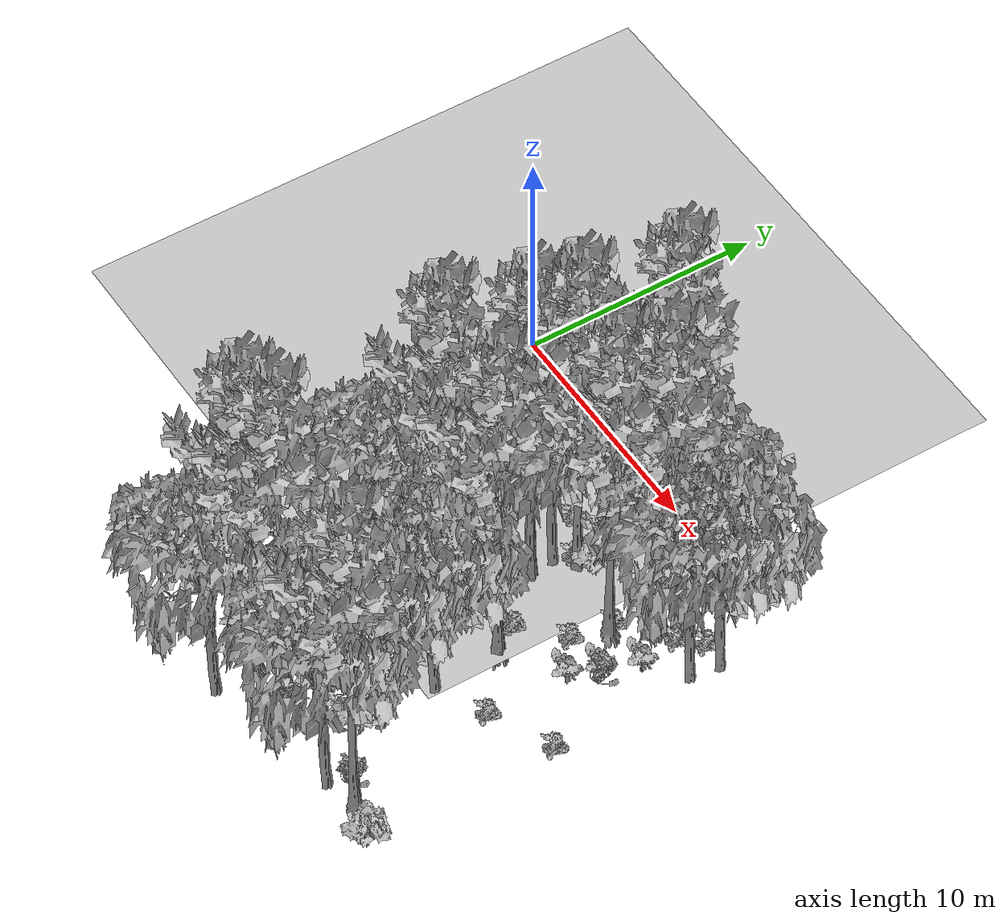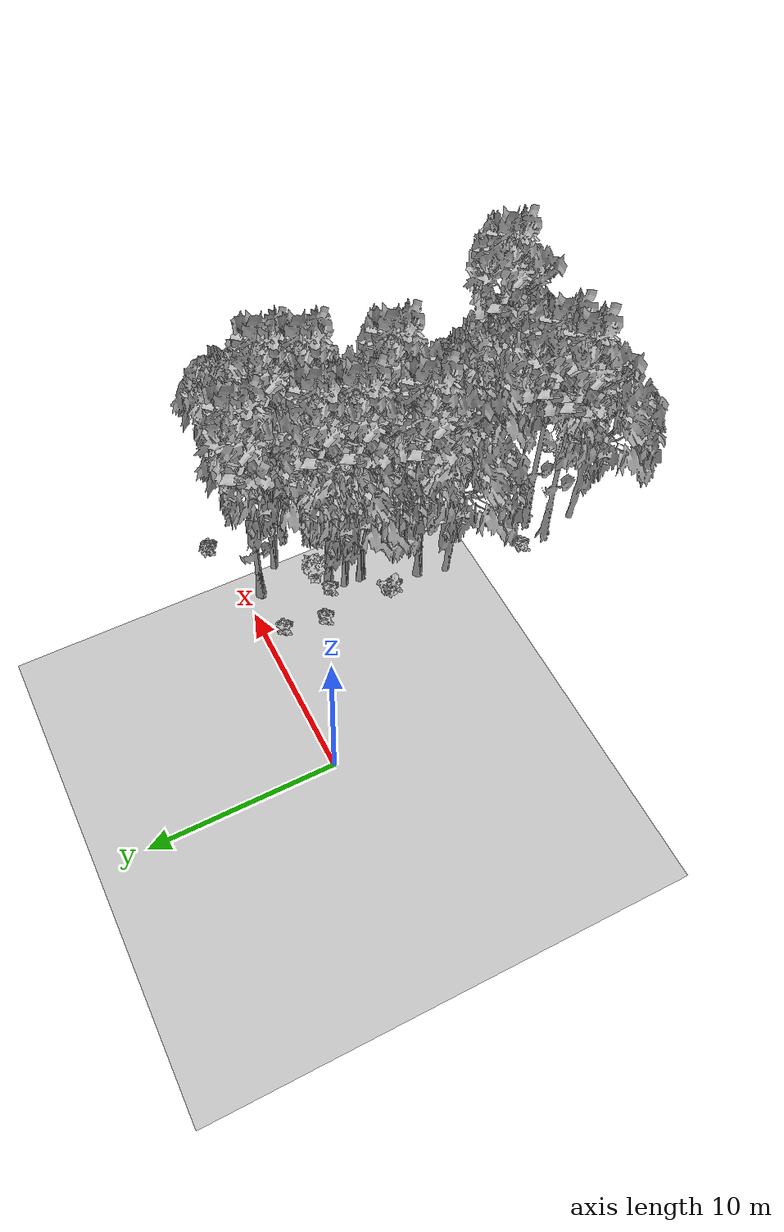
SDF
<sdf version="1.7">
 <world name="default">
  <model name="ground_plane">
   <static>1</static>
   <link name="link">
    <collision name="collision">
     <pose>-50 0 0 0 -0 0</pose>
     <geometry><plane><normal>0 0 1</normal><size>80 80</size></plane></geometry>
     <surface><contact><ode><min_depth>0.01</min_depth><max_vel>0</max_vel></ode></contact></surface>
    </collision>
    <visual name="grass">
     <cast_shadows>0</cast_shadows>
     <geometry>
      <mesh>
       <scale>0.46714285714285714 0.46714285714285714 0.1</scale>
       <uri>file://grass_plane/meshes/grass_plane.dae</uri>
      </mesh>
     </geometry>
    </visual>
   </link>
  </model>
  <model name="Tree 9">
   <static>1</static>
   <pose>12.309583372342772 -12.2217204270489 0 1.57079 -0 0</pose>
   <link name="link">
    <collision name="collision">
     <geometry><mesh><scale>3.5 5 3.5</scale><uri>model://tree_2/meshes/tree_2.obj</uri></mesh></geometry>
    </collision>
    <visual name="visual">
     <geometry><mesh><scale>3.5 5 3.5</scale><uri>model://tree_2/meshes/tree_2.obj</uri></mesh></geometry>
    </visual>
   </link>
  </model>
  <model name="Tree 103">
   <static>1</static>
   <pose>12.062519761279738 -9.232381922225752 0 1.57079 -0 0</pose>
   <link name="link">
    <collision name="collision">
     <geometry><mesh><scale>3.5 5 3.5</scale><uri>model://tree_9/meshes/tree_9.obj</uri></mesh></geometry>
    </collision>
    <visual name="visual">
     <geometry><mesh><scale>3.5 5 3.5</scale><uri>model://tree_9/meshes/tree_9.obj</uri></mesh></geometry>
    </visual>
   </link>
  </model>
  <model name="Tree 137">
   <static>1</static>
   <pose>7.955845180419239 -10.832880005106471 0 1.57079 -0 0</pose>
   <link name="link">
    <collision name="collision">
     <geometry><mesh><scale>3.5 5 3.5</scale><uri>model://tree_2/meshes/tree_2.obj</uri></mesh></geometry>
    </collision>
    <visual name="visual">
     <geometry><mesh><scale>3.5 5 3.5</scale><uri>model://tree_2/meshes/tree_2.obj</uri></mesh></geometry>
    </visual>
   </link>
  </model>
  <model name="Tree 139">
   <static>1</static>
   <pose>12.35849008661964 -2.2726214683915913 0 1.57079 -0 0</pose>
   <link name="link">
    <collision name="collision">
     <geometry><mesh><scale>3.5 5 3.5</scale><uri>model://tree_2/meshes/tree_2.obj</uri></mesh></geometry>
    </collision>
    <visual name="visual">
     <geometry><mesh><scale>3.5 5 3.5</scale><uri>model://tree_2/meshes/tree_2.obj</uri></mesh></geometry>
    </visual>
   </link>
  </model>
  <model name="Tree 150">
   <static>1</static>
   <pose>15.406259742337241 -17.465173267519056 0 1.57079 -0 0</pose>
   <link name="link">
    <collision name="collision">
     <geometry><mesh><scale>3.5 5 3.5</scale><uri>model://tree_9/meshes/tree_9.obj</uri></mesh></geometry>
    </collision>
    <visual name="visual">
     <geometry><mesh><scale>3.5 5 3.5</scale><uri>model://tree_9/meshes/tree_9.obj</uri></mesh></geometry>
    </visual>
   </link>
  </model>
  <model name="Tree 215">
   <static>1</static>
   <pose>13.959473353606299 -17.83985903934651 0 1.57079 -0 0</pose>
   <link name="link">
    <collision name="collision">
     <geometry><mesh><scale>3.5 5 3.5</scale><uri>model://tree_2/meshes/tree_2.obj</uri></mesh></geometry>
    </collision>
    <visual name="visual">
     <geometry><mesh><scale>3.5 5 3.5</scale><uri>model://tree_2/meshes/tree_2.obj</uri></mesh></geometry>
    </visual>
   </link>
  </model>
  <model name="Tree 228">
   <static>1</static>
   <pose>8.51660648190854 -9.24911585401582 0 1.57079 -0 0</pose>
   <link name="link">
    <collision name="collision">
     <geometry><mesh><scale>3.5 5 3.5</scale><uri>model://tree_9/meshes/tree_9.obj</uri></mesh></geometry>
    </collision>
    <visual name="visual">
     <geometry><mesh><scale>3.5 5 3.5</scale><uri>model://tree_9/meshes/tree_9.obj</uri></mesh></geometry>
    </visual>
   </link>
  </model>
  <model name="Tree 231">
   <static>1</static>
   <pose>12.673082798230759 -14.77720903908655 0 1.57079 -0 0</pose>
   <link name="link">
    <collision name="collision">
     <geometry><mesh><scale>3.5 5 3.5</scale><uri>model://tree_2/meshes/tree_2.obj</uri></mesh></geometry>
    </collision>
    <visual name="visual">
     <geometry><mesh><scale>3.5 5 3.5</scale><uri>model://tree_2/meshes/tree_2.obj</uri></mesh></geometry>
    </visual>
   </link>
  </model>
  <model name="Tree 248">
   <static>1</static>
   <pose>11.029627798202952 -0.8209043221319305 0 1.57079 -0 0</pose>
   <link name="link">
    <collision name="collision">
     <geometry><mesh><scale>3.5 5 3.5</scale><uri>model://tree_9/meshes/tree_9.obj</uri></mesh></geometry>
    </collision>
    <visual name="visual">
     <geometry><mesh><scale>3.5 5 3.5</scale><uri>model://tree_9/meshes/tree_9.obj</uri></mesh></geometry>
    </visual>
   </link>
  </model>
  <model name="Tree 264">
   <static>1</static>
   <pose>9.463896387590324 -6.199306727730949 0 1.57079 -0 0</pose>
   <link name="link">
    <collision name="collision">
     <geometry><mesh><scale>3.5 5 3.5</scale><uri>model://tree_2/meshes/tree_2.obj</uri></mesh></geometry>
    </collision>
    <visual name="visual">
     <geometry><mesh><scale>3.5 5 3.5</scale><uri>model://tree_2/meshes/tree_2.obj</uri></mesh></geometry>
    </visual>
   </link>
  </model>
  <model name="Tree 267">
   <static>1</static>
   <pose>8.092359282896474 -19.07677764830619 0 1.57079 -0 0</pose>
   <link name="link">
    <collision name="collision">
     <geometry><mesh><scale>3.5 5 3.5</scale><uri>model://tree_2/meshes/tree_2.obj</uri></mesh></geometry>
    </collision>
    <visual name="visual">
     <geometry><mesh><scale>3.5 5 3.5</scale><uri>model://tree_2/meshes/tree_2.obj</uri></mesh></geometry>
    </visual>
   </link>
  </model>
  <model name="Tree 300">
   <static>1</static>
   <pose>9.52173555787958 -5.285309377435119 0 1.57079 -0 0</pose>
   <link name="link">
    <collision name="collision">
     <geometry><mesh><scale>3.5 5 3.5</scale><uri>model://tree_2/meshes/tree_2.obj</uri></mesh></geometry>
    </collision>
    <visual name="visual">
     <geometry><mesh><scale>3.5 5 3.5</scale><uri>model://tree_2/meshes/tree_2.obj</uri></mesh></geometry>
    </visual>
   </link>
  </model>
  <model name="Tree 323">
   <static>1</static>
   <pose>17.11360696069857 -2.8033802953271874 0 1.57079 -0 0</pose>
   <link name="link">
    <collision name="collision">
     <geometry><mesh><scale>3.5 5 3.5</scale><uri>model://tree_2/meshes/tree_2.obj</uri></mesh></geometry>
    </collision>
    <visual name="visual">
     <geometry><mesh><scale>3.5 5 3.5</scale><uri>model://tree_2/meshes/tree_2.obj</uri></mesh></geometry>
    </visual>
   </link>
  </model>
  <model name="Tree 367">
   <static>1</static>
   <pose>14.357825842430948 -3.569382027627782 0 1.57079 -0 0</pose>
   <link name="link">
    <collision name="collision">
     <geometry><mesh><scale>3.5 5 3.5</scale><uri>model://tree_9/meshes/tree_9.obj</uri></mesh></geometry>
    </collision>
    <visual name="visual">
     <geometry><mesh><scale>3.5 5 3.5</scale><uri>model://tree_9/meshes/tree_9.obj</uri></mesh></geometry>
    </visual>
   </link>
  </model>
  <model name="Tree 441">
   <static>1</static>
   <pose>13.528756359365964 -5.277615696457147 0 1.57079 -0 0</pose>
   <link name="link">
    <collision name="collision">
     <geometry><mesh><scale>3.5 5 3.5</scale><uri>model://tree_9/meshes/tree_9.obj</uri></mesh></geometry>
    </collision>
    <visual name="visual">
     <geometry><mesh><scale>3.5 5 3.5</scale><uri>model://tree_9/meshes/tree_9.obj</uri></mesh></geometry>
    </visual>
   </link>
  </model>
  <model name="Tree 466">
   <static>1</static>
   <pose>10.262706517409256 -4.57759831437869 0 1.57079 -0 0</pose>
   <link name="link">
    <collision name="collision">
     <geometry><mesh><scale>3.5 5 3.5</scale><uri>model://tree_9/meshes/tree_9.obj</uri></mesh></geometry>
    </collision>
    <visual name="visual">
     <geometry><mesh><scale>3.5 5 3.5</scale><uri>model://tree_9/meshes/tree_9.obj</uri></mesh></geometry>
    </visual>
   </link>
  </model>
  <model name="Tree 572">
   <static>1</static>
   <pose>16.954382600724166 -4.026039336942134 0 1.57079 -0 0</pose>
   <link name="link">
    <collision name="collision">
     <geometry><mesh><scale>3.5 5 3.5</scale><uri>model://tree_2/meshes/tree_2.obj</uri></mesh></geometry>
    </collision>
    <visual name="visual">
     <geometry><mesh><scale>3.5 5 3.5</scale><uri>model://tree_2/meshes/tree_2.obj</uri></mesh></geometry>
    </visual>
   </link>
  </model>
  <model name="Tree 594">
   <static>1</static>
   <pose>9.161278707730517 -16.681437749249834 0 1.57079 -0 0</pose>
   <link name="link">
    <collision name="collision">
     <geometry><mesh><scale>3.5 5 3.5</scale><uri>model://tree_9/meshes/tree_9.obj</uri></mesh></geometry>
    </collision>
    <visual name="visual">
     <geometry><mesh><scale>3.5 5 3.5</scale><uri>model://tree_9/meshes/tree_9.obj</uri></mesh></geometry>
    </visual>
   </link>
  </model>
  <model name="Tree 617">
   <static>1</static>
   <pose>7.914665873363013 -17.185431097496632 0 1.57079 -0 0</pose>
   <link name="link">
    <collision name="collision">
     <geometry><mesh><scale>3.5 5 3.5</scale><uri>model://tree_9/meshes/tree_9.obj</uri></mesh></geometry>
    </collision>
    <visual name="visual">
     <geometry><mesh><scale>3.5 5 3.5</scale><uri>model://tree_9/meshes/tree_9.obj</uri></mesh></geometry>
    </visual>
   </link>
  </model>
  <model name="Tree 623">
   <static>1</static>
   <pose>9.726003195987111 -6.3142256428008 0 1.57079 -0 0</pose>
   <link name="link">
    <collision name="collision">
     <geometry><mesh><scale>3.5 5 3.5</scale><uri>model://tree_9/meshes/tree_9.obj</uri></mesh></geometry>
    </collision>
    <visual name="visual">
     <geometry><mesh><scale>3.5 5 3.5</scale><uri>model://tree_9/meshes/tree_9.obj</uri></mesh></geometry>
    </visual>
   </link>
  </model>
  <model name="Bush 5">
   <static>1</static>
   <pose>9.710115705403297 -4.450925651884525 0 1.57079 -0 0</pose>
   <link name="link">
    <collision name="collision">
     <geometry><mesh><scale>2 2 2</scale><uri>model://bush_2/meshes/bush_2.obj</uri></mesh></geometry>
     <surface><contact><collide_without_contact>false</collide_without_contact></contact></surface>
    </collision>
    <visual name="visual">
     <geometry><mesh><scale>2 2 2</scale><uri>model://bush_2/meshes/bush_2.obj</uri></mesh></geometry>
    </visual>
   </link>
  </model>
  <model name="Bush 27">
   <static>1</static>
   <pose>15.303681620292856 0.5405769510107277 0 1.57079 -0 0</pose>
   <link name="link">
    <collision name="collision">
     <geometry><mesh><scale>2 2 2</scale><uri>model://bush_2/meshes/bush_2.obj</uri></mesh></geometry>
     <surface><contact><collide_without_contact>false</collide_without_contact></contact></surface>
    </collision>
    <visual name="visual">
     <geometry><mesh><scale>2 2 2</scale><uri>model://bush_2/meshes/bush_2.obj</uri></mesh></geometry>
    </visual>
   </link>
  </model>
  <model name="Bush 45">
   <static>1</static>
   <pose>16.927225578890372 -9.919810582904482 0 1.57079 -0 0</pose>
   <link name="link">
    <collision name="collision">
     <geometry><mesh><scale>2 2 2</scale><uri>model://bush_2/meshes/bush_2.obj</uri></mesh></geometry>
     <surface><contact><collide_without_contact>false</collide_without_contact></contact></surface>
    </collision>
    <visual name="visual">
     <geometry><mesh><scale>2 2 2</scale><uri>model://bush_2/meshes/bush_2.obj</uri></mesh></geometry>
    </visual>
   </link>
  </model>
  <model name="Bush 67">
   <static>1</static>
   <pose>11.310461178170499 -8.154298725105793 0 1.57079 -0 0</pose>
   <link name="link">
    <collision name="collision">
     <geometry><mesh><scale>2 2 2</scale><uri>model://bush_2/meshes/bush_2.obj</uri></mesh></geometry>
     <surface><contact><collide_without_contact>false</collide_without_contact></contact></surface>
    </collision>
    <visual name="visual">
     <geometry><mesh><scale>2 2 2</scale><uri>model://bush_2/meshes/bush_2.obj</uri></mesh></geometry>
    </visual>
   </link>
  </model>
  <model name="Bush 72">
   <static>1</static>
   <pose>12.32403449729376 -15.541047147872273 0 1.57079 -0 0</pose>
   <link name="link">
    <collision name="collision">
     <geometry><mesh><scale>2 2 2</scale><uri>model://bush_1/meshes/bush_1.obj</uri></mesh></geometry>
     <surface><contact><collide_without_contact>false</collide_without_contact></contact></surface>
    </collision>
    <visual name="visual">
     <geometry><mesh><scale>2 2 2</scale><uri>model://bush_1/meshes/bush_1.obj</uri></mesh></geometry>
    </visual>
   </link>
  </model>
  <model name="Bush 78">
   <static>1</static>
   <pose>15.199871105927208 0.6125138580070271 0 1.57079 -0 0</pose>
   <link name="link">
    <collision name="collision">
     <geometry><mesh><scale>2 2 2</scale><uri>model://bush_2/meshes/bush_2.obj</uri></mesh></geometry>
     <surface><contact><collide_without_contact>false</collide_without_contact></contact></surface>
    </collision>
    <visual name="visual">
     <geometry><mesh><scale>2 2 2</scale><uri>model://bush_2/meshes/bush_2.obj</uri></mesh></geometry>
    </visual>
   </link>
  </model>
  <model name="Bush 91">
   <static>1</static>
   <pose>8.496438712850129 -1.1046942588215742 0 1.57079 -0 0</pose>
   <link name="link">
    <collision name="collision">
     <geometry><mesh><scale>2 2 2</scale><uri>model://bush_2/meshes/bush_2.obj</uri></mesh></geometry>
     <surface><contact><collide_without_contact>false</collide_without_contact></contact></surface>
    </collision>
    <visual name="visual">
     <geometry><mesh><scale>2 2 2</scale><uri>model://bush_2/meshes/bush_2.obj</uri></mesh></geometry>
    </visual>
   </link>
  </model>
  <model name="Bush 100">
   <static>1</static>
   <pose>10.743295488313336 -4.223883676249336 0 1.57079 -0 0</pose>
   <link name="link">
    <collision name="collision">
     <geometry><mesh><scale>2 2 2</scale><uri>model://bush_1/meshes/bush_1.obj</uri></mesh></geometry>
     <surface><contact><collide_without_contact>false</collide_without_contact></contact></surface>
    </collision>
    <visual name="visual">
     <geometry><mesh><scale>2 2 2</scale><uri>model://bush_1/meshes/bush_1.obj</uri></mesh></geometry>
    </visual>
   </link>
  </model>
  <model name="Bush 137">
   <static>1</static>
   <pose>16.92031915167108 -17.994399332403894 0 1.57079 -0 0</pose>
   <link name="link">
    <collision name="collision">
     <geometry><mesh><scale>2 2 2</scale><uri>model://bush_1/meshes/bush_1.obj</uri></mesh></geometry>
     <surface><contact><collide_without_contact>false</collide_without_contact></contact></surface>
    </collision>
    <visual name="visual">
     <geometry><mesh><scale>2 2 2</scale><uri>model://bush_1/meshes/bush_1.obj</uri></mesh></geometry>
    </visual>
   </link>
  </model>
  <model name="Bush 173">
   <static>1</static>
   <pose>9.639561069056548 -14.35946723150846 0 1.57079 -0 0</pose>
   <link name="link">
    <collision name="collision">
     <geometry><mesh><scale>2 2 2</scale><uri>model://bush_0/meshes/bush_0.obj</uri></mesh></geometry>
     <surface><contact><collide_without_contact>false</collide_without_contact></contact></surface>
    </collision>
    <visual name="visual">
     <geometry><mesh><scale>2 2 2</scale><uri>model://bush_0/meshes/bush_0.obj</uri></mesh></geometry>
    </visual>
   </link>
  </model>
  <model name="Bush 211">
   <static>1</static>
   <pose>14.382351902127503 -17.04580788566225 0 1.57079 -0 0</pose>
   <link name="link">
    <collision name="collision">
     <geometry><mesh><scale>2 2 2</scale><uri>model://bush_4/meshes/bush_4.obj</uri></mesh></geometry>
     <surface><contact><collide_without_contact>false</collide_without_contact></contact></surface>
    </collision>
    <visual name="visual">
     <geometry><mesh><scale>2 2 2</scale><uri>model://bush_4/meshes/bush_4.obj</uri></mesh></geometry>
    </visual>
   </link>
  </model>
  <model name="Bush 232">
   <static>1</static>
   <pose>8.337769521136444 -7.737859286901845 0 1.57079 -0 0</pose>
   <link name="link">
    <collision name="collision">
     <geometry><mesh><scale>2 2 2</scale><uri>model://bush_2/meshes/bush_2.obj</uri></mesh></geometry>
     <surface><contact><collide_without_contact>false</collide_without_contact></contact></surface>
    </collision>
    <visual name="visual">
     <geometry><mesh><scale>2 2 2</scale><uri>model://bush_2/meshes/bush_2.obj</uri></mesh></geometry>
    </visual>
   </link>
  </model>
  <model name="Bush 234">
   <static>1</static>
   <pose>14.72855409056637 -7.912983988539324 0 1.57079 -0 0</pose>
   <link name="link">
    <collision name="collision">
     <geometry><mesh><scale>2 2 2</scale><uri>model://bush_0/meshes/bush_0.obj</uri></mesh></geometry>
     <surface><contact><collide_without_contact>false</collide_without_contact></contact></surface>
    </collision>
    <visual name="visual">
     <geometry><mesh><scale>2 2 2</scale><uri>model://bush_0/meshes/bush_0.obj</uri></mesh></geometry>
    </visual>
   </link>
  </model>
  <model name="Bush 325">
   <static>1</static>
   <pose>7.946678569548546 -7.070049585447862 0 1.57079 -0 0</pose>
   <link name="link">
    <collision name="collision">
     <geometry><mesh><scale>2 2 2</scale><uri>model://bush_0/meshes/bush_0.obj</uri></mesh></geometry>
     <surface><contact><collide_without_contact>false</collide_without_contact></contact></surface>
    </collision>
    <visual name="visual">
     <geometry><mesh><scale>2 2 2</scale><uri>model://bush_0/meshes/bush_0.obj</uri></mesh></geometry>
    </visual>
   </link>
  </model>
  <model name="Bush 389">
   <static>1</static>
   <pose>12.930382113722686 -6.676004025719692 0 1.57079 -0 0</pose>
   <link name="link">
    <collision name="collision">
     <geometry><mesh><scale>2 2 2</scale><uri>model://bush_2/meshes/bush_2.obj</uri></mesh></geometry>
     <surface><contact><collide_without_contact>false</collide_without_contact></contact></surface>
    </collision>
    <visual name="visual">
     <geometry><mesh><scale>2 2 2</scale><uri>model://bush_2/meshes/bush_2.obj</uri></mesh></geometry>
    </visual>
   </link>
  </model>
  <model name="Bush 429">
   <static>1</static>
   <pose>7.613052575340653 -15.527984499525278 0 1.57079 -0 0</pose>
   <link name="link">
    <collision name="collision">
     <geometry><mesh><scale>2 2 2</scale><uri>model://bush_2/meshes/bush_2.obj</uri></mesh></geometry>
     <surface><contact><collide_without_contact>false</collide_without_contact></contact></surface>
    </collision>
    <visual name="visual">
     <geometry><mesh><scale>2 2 2</scale><uri>model://bush_2/meshes/bush_2.obj</uri></mesh></geometry>
    </visual>
   </link>
  </model>
  <model name="Bush 445">
   <static>1</static>
   <pose>15.893441638187312 -2.5793199320377624 0 1.57079 -0 0</pose>
   <link name="link">
    <collision name="collision">
     <geometry><mesh><scale>2 2 2</scale><uri>model://bush_2/meshes/bush_2.obj</uri></mesh></geometry>
     <surface><contact><collide_without_contact>false</collide_without_contact></contact></surface>
    </collision>
    <visual name="visual">
     <geometry><mesh><scale>2 2 2</scale><uri>model://bush_2/meshes/bush_2.obj</uri></mesh></geometry>
    </visual>
   </link>
  </model>
  <model name="Bush 492">
   <static>1</static>
   <pose>15.174859376141157 -6.715637403547902 0 1.57079 -0 0</pose>
   <link name="link">
    <collision name="collision">
     <geometry><mesh><scale>2 2 2</scale><uri>model://bush_0/meshes/bush_0.obj</uri></mesh></geometry>
     <surface><contact><collide_without_contact>false</collide_without_contact></contact></surface>
    </collision>
    <visual name="visual">
     <geometry><mesh><scale>2 2 2</scale><uri>model://bush_0/meshes/bush_0.obj</uri></mesh></geometry>
    </visual>
   </link>
  </model>
  <model name="Bush 505">
   <static>1</static>
   <pose>13.23570042330089 -4.925559518710358 0 1.57079 -0 0</pose>
   <link name="link">
    <collision name="collision">
     <geometry><mesh><scale>2 2 2</scale><uri>model://bush_2/meshes/bush_2.obj</uri></mesh></geometry>
     <surface><contact><collide_without_contact>false</collide_without_contact></contact></surface>
    </collision>
    <visual name="visual">
     <geometry><mesh><scale>2 2 2</scale><uri>model://bush_2/meshes/bush_2.obj</uri></mesh></geometry>
    </visual>
   </link>
  </model>
  <model name="Bush 531">
   <static>1</static>
   <pose>15.127518651046323 -3.4248174227515875 0 1.57079 -0 0</pose>
   <link name="link">
    <collision name="collision">
     <geometry><mesh><scale>2 2 2</scale><uri>model://bush_2/meshes/bush_2.obj</uri></mesh></geometry>
     <surface><contact><collide_without_contact>false</collide_without_contact></contact></surface>
    </collision>
    <visual name="visual">
     <geometry><mesh><scale>2 2 2</scale><uri>model://bush_2/meshes/bush_2.obj</uri></mesh></geometry>
    </visual>
   </link>
  </model>
  <model name="Bush 598">
   <static>1</static>
   <pose>8.094483125863924 -3.4086288633762223 0 1.57079 -0 0</pose>
   <link name="link">
    <collision name="collision">
     <geometry><mesh><scale>2 2 2</scale><uri>model://bush_2/meshes/bush_2.obj</uri></mesh></geometry>
     <surface><contact><collide_without_contact>false</collide_without_contact></contact></surface>
    </collision>
    <visual name="visual">
     <geometry><mesh><scale>2 2 2</scale><uri>model://bush_2/meshes/bush_2.obj</uri></mesh></geometry>
    </visual>
   </link>
  </model>
  <model name="Bush 600">
   <static>1</static>
   <pose>15.31874940240899 -6.8999020778011655 0 1.57079 -0 0</pose>
   <link name="link">
    <collision name="collision">
     <geometry><mesh><scale>2 2 2</scale><uri>model://bush_4/meshes/bush_4.obj</uri></mesh></geometry>
     <surface><contact><collide_without_contact>false</collide_without_contact></contact></surface>
    </collision>
    <visual name="visual">
     <geometry><mesh><scale>2 2 2</scale><uri>model://bush_4/meshes/bush_4.obj</uri></mesh></geometry>
    </visual>
   </link>
  </model>
  <model name="Bush 616">
   <static>1</static>
   <pose>9.623844177518642 -16.909944775485187 0 1.57079 -0 0</pose>
   <link name="link">
    <collision name="collision">
     <geometry><mesh><scale>2 2 2</scale><uri>model://bush_2/meshes/bush_2.obj</uri></mesh></geometry>
     <surface><contact><collide_without_contact>false</collide_without_contact></contact></surface>
    </collision>
    <visual name="visual">
     <geometry><mesh><scale>2 2 2</scale><uri>model://bush_2/meshes/bush_2.obj</uri></mesh></geometry>
    </visual>
   </link>
  </model>
  <model name="Bush 625">
   <static>1</static>
   <pose>14.28844595138495 -11.162353390149615 0 1.57079 -0 0</pose>
   <link name="link">
    <collision name="collision">
     <geometry><mesh><scale>2 2 2</scale><uri>model://bush_2/meshes/bush_2.obj</uri></mesh></geometry>
     <surface><contact><collide_without_contact>false</collide_without_contact></contact></surface>
    </collision>
    <visual name="visual">
     <geometry><mesh><scale>2 2 2</scale><uri>model://bush_2/meshes/bush_2.obj</uri></mesh></geometry>
    </visual>
   </link>
  </model>
  <model name="Bush 626">
   <static>1</static>
   <pose>15.770212636679972 -5.2821133057046055 0 1.57079 -0 0</pose>
   <link name="link">
    <collision name="collision">
     <geometry><mesh><scale>2 2 2</scale><uri>model://bush_0/meshes/bush_0.obj</uri></mesh></geometry>
     <surface><contact><collide_without_contact>false</collide_without_contact></contact></surface>
    </collision>
    <visual name="visual">
     <geometry><mesh><scale>2 2 2</scale><uri>model://bush_0/meshes/bush_0.obj</uri></mesh></geometry>
    </visual>
   </link>
  </model>
 </world>
</sdf>
